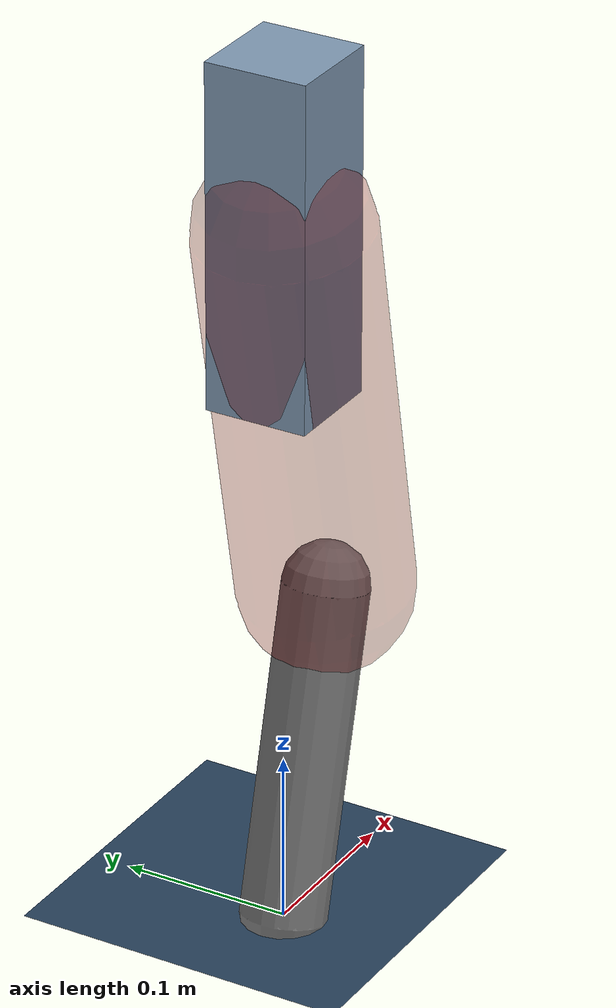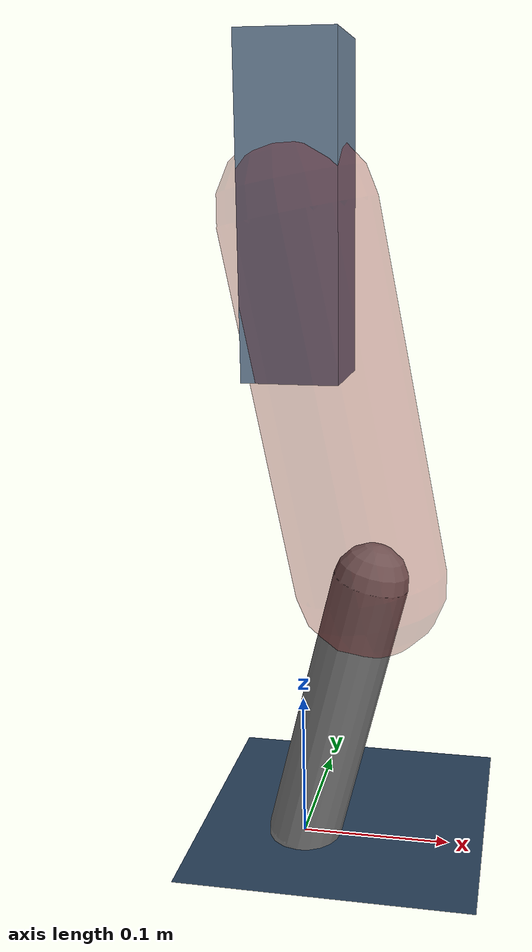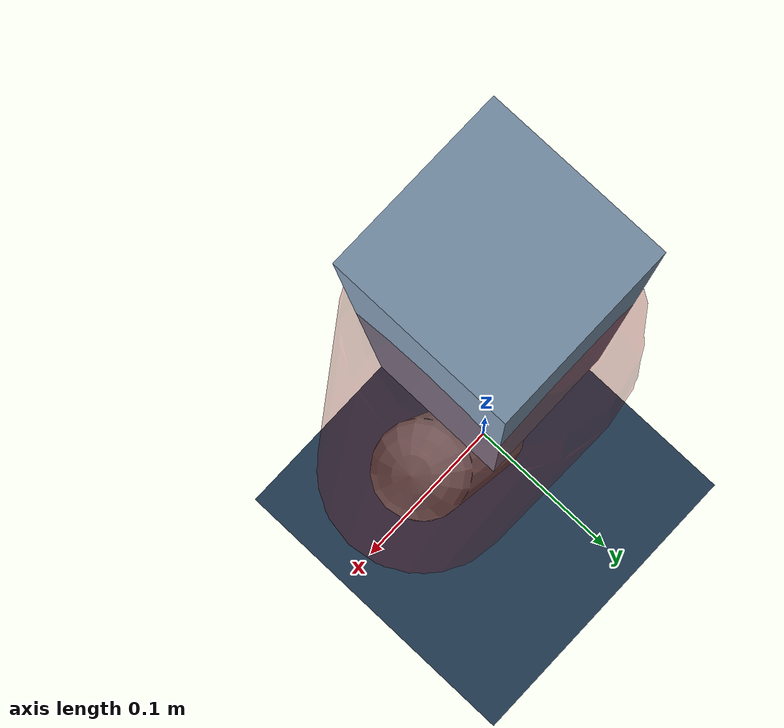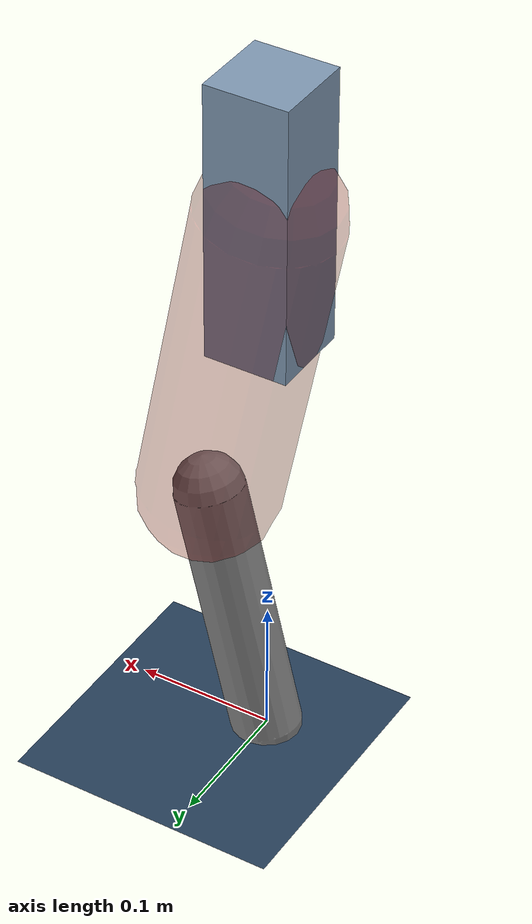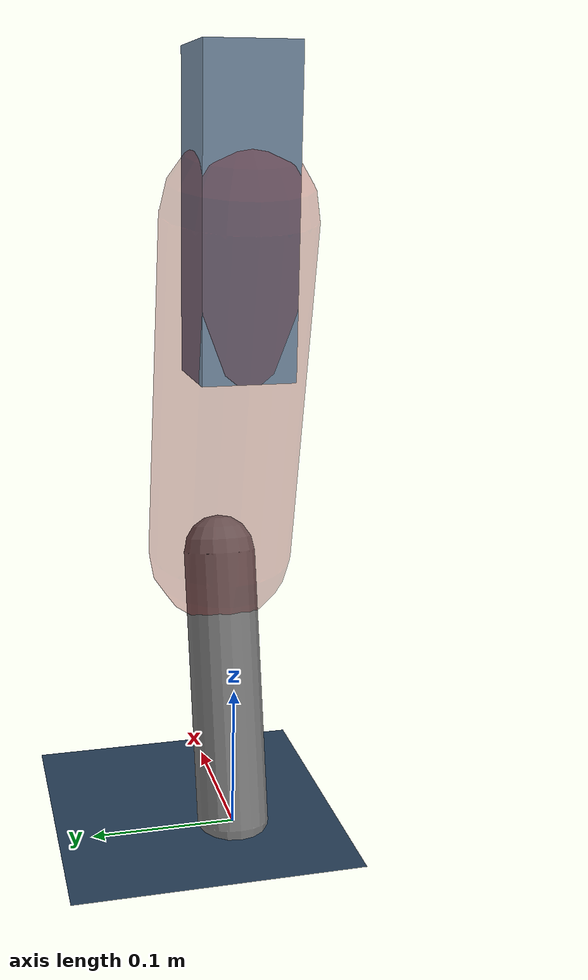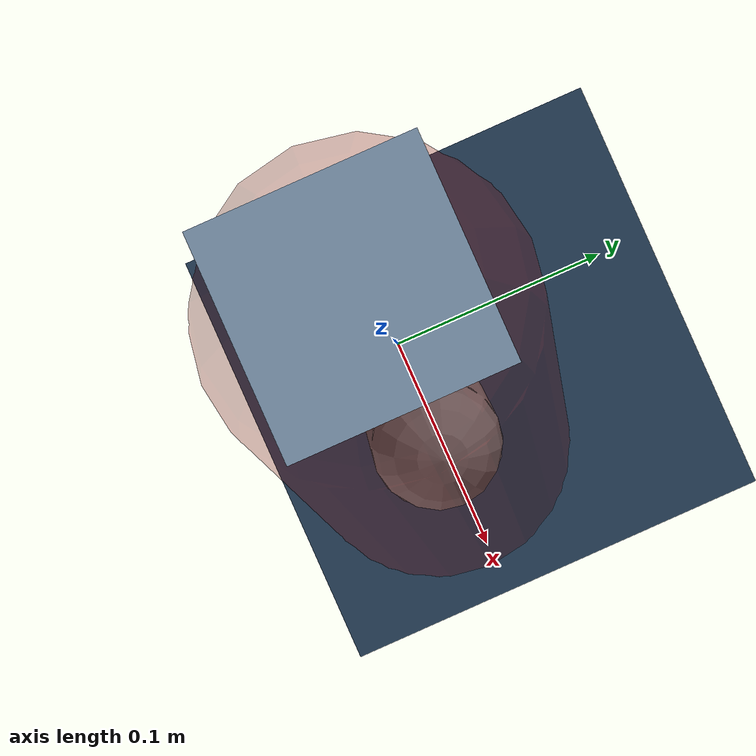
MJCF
<mujoco model="Hopper2D">
	<compiler inertiafromgeom="true" angle="radian" />
	<option timestep="0.001" integrator="implicit" cone="elliptic" solver="Newton" tolerance="1e-10" />

	<default>
		<geom contype="1" conaffinity="1" condim="3" friction="2 0.005 0.0001" solref="0.005 1" />
		<joint limited="true" damping="0.1" />
	</default>

	<asset>
		<texture name="skybox" type="skybox" builtin="gradient" rgb1=".4 .6 .8" rgb2="0 0 0" width="800" height="800" />
		<texture name="grid" type="2d" builtin="checker" rgb1=".1 .2 .3" rgb2=".2 .3 .4" width="300" height="300" mark="edge" markrgb=".2 .3 .4" />
		<material name="ground" texture="grid" texrepeat="1 1" texuniform="true" reflectance="0.1" />
		<material name="leg" rgba="0.5 0.6 0.7 1" />
	</asset>

	<worldbody>

		<geom name="floor" type="plane" size="5 5 0.25" material="ground" />

		<light directional="false" diffuse="0.8 0.8 0.8" specular="0.3 0.3 0.3" pos="0 0 2" dir="0 0 -1" />
		<light mode="targetbodycom" target="base" directional="false" diffuse="0.8 0.8 0.8" specular="0.3 0.3 0.3" pos="0 0 2" dir="0 0 -1" />

		<camera name="fixed" pos="0 -2 1" xyaxes="1 0 0 0 0 1" />
		<camera name="tracking" mode="trackcom" pos="0 -3 1" />

		<body name="root" pos="0 0 0.4202909685006381">
			<joint name="slide_x" type="slide" axis="1 0 0" range="-100 100" />
			<joint name="slide_z" type="slide" axis="0 0 1" range="0 10" />

			<body name="base" pos="0 0 0">
				<geom name="torso" type="box" size="0.03 0.03 0.1" mass="1.51" material="leg" />

				<body name="link1" pos="0 0 0" euler="0 1.3761764694465124 0">
					<joint type="hinge" axis="0 -1 0" pos="0 0 0" name="hinge1" limited="true" range="-3.14 3.14" stiffness="0" damping="0.1" />
					<geom name="thigh" type="capsule" fromto="0 0 0 0.23713481207770548 0 0" size="0.05" rgba="0.5 0 0 0.3" mass="0.8232505114020342" />

					<body name="link2" pos="0.23713481207770548 0 0" euler="0 0.4343353838335636 0">
						<joint type="hinge" axis="0 -1 0" pos="0 0 0" name="hinge2" limited="true" range="-3.14 3.14" stiffness="0" damping="0.1" />
						<geom name="shank" type="capsule" fromto="0 0 0 0.19315615642293257 0 0" size="0.025" mass="0.3951249251383461" />

					</body>
				</body>
			</body>
		</body>
	</worldbody>

	<actuator>
		<motor name="torque1" joint="hinge1" ctrlrange="-20.049941278517135 20.049941278517135" ctrllimited="true" gear="1" />
		<motor name="torque2" joint="hinge2" ctrlrange="-34.80276409274384 34.80276409274384" ctrllimited="true" gear="1" />
	</actuator>
</mujoco>
